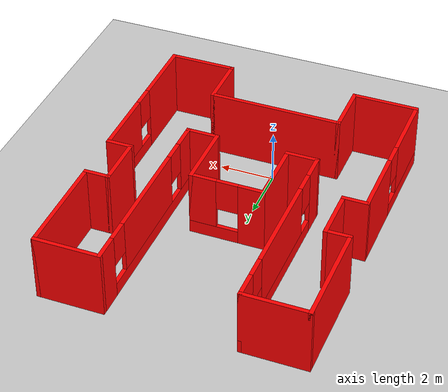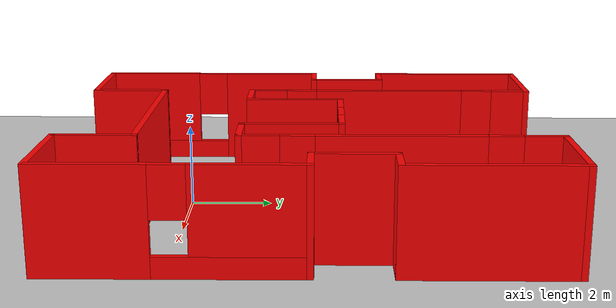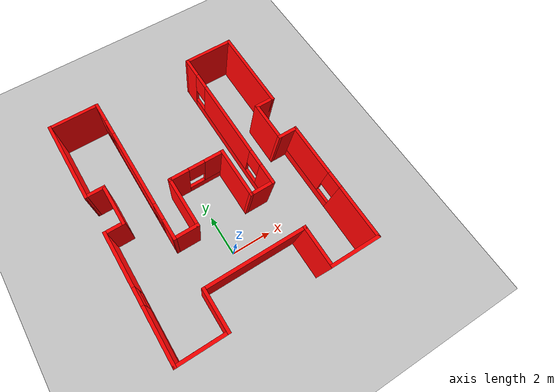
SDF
<sdf version="1.6">
 <world name="default">
  <light name="sun" type="directional">
   <pose>0 0 15 0 -0 0</pose>
   <diffuse>1 1 1 1</diffuse>
   <specular>0.1 0.1 0.1 1</specular>
   <attenuation>
    <range>1000</range>
    <constant>0.9</constant>
    <linear>0.01</linear>
    <quadratic>0.001</quadratic>
   </attenuation>
   <direction>-0.5 0.5 -1</direction>
  </light>
  <model name="ground_plane">
   <static>1</static>
   <link name="link">
    <collision name="collision">
     <geometry><plane><normal>0 0 1</normal><size>100 100</size></plane></geometry>
     <surface><friction><ode><mu>100</mu><mu2>50</mu2></ode></friction></surface>
    </collision>
    <visual name="visual">
     <cast_shadows>0</cast_shadows>
     <geometry><plane><normal>0 0 1</normal><size>100 100</size></plane></geometry>
     <material>
      <script><uri>file://media/materials/scripts/gazebo.material</uri><name>Gazebo/Grey</name></script>
     </material>
    </visual>
   </link>
  </model>
  <gravity>0 0 -9.8</gravity>
  <magnetic_field>6e-06 2.3e-05 -4.2e-05</magnetic_field>
  <atmosphere type="adiabatic"/>
  <physics name="default_physics" default="0" type="ode">
   <max_step_size>0.001</max_step_size>
   <real_time_factor>1</real_time_factor>
   <real_time_update_rate>1000</real_time_update_rate>
  </physics>
  <scene><ambient>0.4 0.4 0.4 1</ambient><background>0.7 0.7 0.7 1</background><shadows>1</shadows></scene>
  <spherical_coordinates>
   <surface_model>EARTH_WGS84</surface_model>
   <latitude_deg>0</latitude_deg>
   <longitude_deg>0</longitude_deg>
   <elevation>0</elevation>
   <heading_deg>0</heading_deg>
  </spherical_coordinates>
  <model name="Untitled">
   <pose>0.285 2.995 0 0 -0 0</pose>
   <link name="Wall_13">
    <collision name="Wall_13_Collision">
     <geometry><box><size>1.25 0.15 2.5</size></box></geometry>
     <pose>0 0 1.25 0 -0 0</pose>
    </collision>
    <visual name="Wall_13_Visual">
     <pose>0 0 1.25 0 -0 0</pose>
     <geometry><box><size>1.25 0.15 2.5</size></box></geometry>
     <material>
      <script><uri>file://media/materials/scripts/gazebo.material</uri><name>Gazebo/Grey</name></script>
      <ambient>1 0 0 1</ambient>
     </material>
    </visual>
    <pose>-1.875 -1.575 0 0 -0 3.14159</pose>
   </link>
   <link name="Wall_14">
    <pose>-2.425 2.1 0 0 -0 1.5708</pose>
    <visual name="Wall_14_Visual_0">
     <pose>-3.24489 0 1.25 0 -0 0</pose>
     <geometry><box><size>1.01022 0.15 2.5</size></box></geometry>
     <material>
      <script><uri>file://media/materials/scripts/gazebo.material</uri><name>Gazebo/Grey</name></script>
      <ambient>1 0 0 1</ambient>
     </material>
    </visual>
    <collision name="Wall_14_Collision_0">
     <geometry><box><size>1.01022 0.15 2.5</size></box></geometry>
     <pose>-3.24489 0 1.25 0 -0 0</pose>
    </collision>
    <visual name="Wall_14_Visual_1">
     <pose>0.50511 0 0.25 0 -0 0</pose>
     <geometry><box><size>6.48978 0.15 0.5</size></box></geometry>
     <material>
      <script><uri>file://media/materials/scripts/gazebo.material</uri><name>Gazebo/Grey</name></script>
      <ambient>1 0 0 1</ambient>
     </material>
    </visual>
    <collision name="Wall_14_Collision_1">
     <geometry><box><size>6.48978 0.15 0.5</size></box></geometry>
     <pose>0.50511 0 0.25 0 -0 0</pose>
    </collision>
    <visual name="Wall_14_Visual_2">
     <pose>0.001046 0 1.5 0 -0 0</pose>
     <geometry><box><size>3.88165 0.15 2</size></box></geometry>
     <material>
      <script><uri>file://media/materials/scripts/gazebo.material</uri><name>Gazebo/Grey</name></script>
      <ambient>1 0 0 1</ambient>
     </material>
    </visual>
    <collision name="Wall_14_Collision_2">
     <geometry><box><size>3.88165 0.15 2</size></box></geometry>
     <pose>0.001046 0 1.5 0 -0 0</pose>
    </collision>
    <visual name="Wall_14_Visual_3">
     <pose>3.24593 0 1.5 0 -0 0</pose>
     <geometry><box><size>1.00813 0.15 2</size></box></geometry>
     <material>
      <script><uri>file://media/materials/scripts/gazebo.material</uri><name>Gazebo/Grey</name></script>
      <ambient>1 0 0 1</ambient>
     </material>
    </visual>
    <collision name="Wall_14_Collision_3">
     <geometry><box><size>1.00813 0.15 2</size></box></geometry>
     <pose>3.24593 0 1.5 0 -0 0</pose>
    </collision>
    <visual name="Wall_14_Visual_4">
     <pose>-2.33978 0 1.9 0 -0 0</pose>
     <geometry><box><size>0.8 0.15 1.2</size></box></geometry>
     <material>
      <script><uri>file://media/materials/scripts/gazebo.material</uri><name>Gazebo/Grey</name></script>
      <ambient>1 0 0 1</ambient>
     </material>
    </visual>
    <collision name="Wall_14_Collision_4">
     <geometry><box><size>0.8 0.15 1.2</size></box></geometry>
     <pose>-2.33978 0 1.9 0 -0 0</pose>
    </collision>
    <visual name="Wall_14_Visual_5">
     <pose>2.34187 0 1.9 0 -0 0</pose>
     <geometry><box><size>0.8 0.15 1.2</size></box></geometry>
     <material>
      <script><uri>file://media/materials/scripts/gazebo.material</uri><name>Gazebo/Grey</name></script>
      <ambient>1 0 0 1</ambient>
     </material>
    </visual>
    <collision name="Wall_14_Collision_5">
     <geometry><box><size>0.8 0.15 1.2</size></box></geometry>
     <pose>2.34187 0 1.9 0 -0 0</pose>
    </collision>
   </link>
   <link name="Wall_15">
    <collision name="Wall_15_Collision">
     <geometry><box><size>2.5 0.15 2.5</size></box></geometry>
     <pose>0 0 1.25 0 -0 0</pose>
    </collision>
    <visual name="Wall_15_Visual">
     <pose>0 0 1.25 0 -0 0</pose>
     <geometry><box><size>2.5 0.15 2.5</size></box></geometry>
     <material>
      <script><uri>file://media/materials/scripts/gazebo.material</uri><name>Gazebo/Grey</name></script>
      <ambient>1 0 0 1</ambient>
     </material>
    </visual>
    <pose>-3.6 5.775 0 0 -0 3.14159</pose>
   </link>
   <link name="Wall_16">
    <collision name="Wall_16_Collision">
     <geometry><box><size>4 0.15 2.5</size></box></geometry>
     <pose>0 0 1.25 0 -0 0</pose>
    </collision>
    <visual name="Wall_16_Visual">
     <pose>0 0 1.25 0 -0 0</pose>
     <geometry><box><size>4 0.15 2.5</size></box></geometry>
     <material>
      <script><uri>file://media/materials/scripts/gazebo.material</uri><name>Gazebo/Grey</name></script>
      <ambient>1 0 0 1</ambient>
     </material>
    </visual>
    <pose>-4.775 3.85 0 0 0 -1.5708</pose>
   </link>
   <link name="Wall_17">
    <collision name="Wall_17_Collision">
     <geometry><box><size>1 0.15 2.5</size></box></geometry>
     <pose>0 0 1.25 0 -0 0</pose>
    </collision>
    <visual name="Wall_17_Visual">
     <pose>0 0 1.25 0 -0 0</pose>
     <geometry><box><size>1 0.15 2.5</size></box></geometry>
     <material>
      <script><uri>file://media/materials/scripts/gazebo.material</uri><name>Gazebo/Grey</name></script>
      <ambient>1 0 0 1</ambient>
     </material>
    </visual>
    <pose>-4.35 1.925 0 0 -0 0</pose>
   </link>
   <link name="Wall_18">
    <collision name="Wall_18_Collision">
     <geometry><box><size>2 0.15 2.5</size></box></geometry>
     <pose>0 0 1.25 0 -0 0</pose>
    </collision>
    <visual name="Wall_18_Visual">
     <pose>0 0 1.25 0 -0 0</pose>
     <geometry><box><size>2 0.15 2.5</size></box></geometry>
     <material>
      <script><uri>file://media/materials/scripts/gazebo.material</uri><name>Gazebo/Grey</name></script>
      <ambient>1 0 0 1</ambient>
     </material>
    </visual>
    <pose>-3.925 1 0 0 0 -1.5708</pose>
   </link>
   <link name="Wall_19">
    <collision name="Wall_19_Collision">
     <geometry><box><size>1 0.15 2.5</size></box></geometry>
     <pose>0 0 1.25 0 -0 0</pose>
    </collision>
    <visual name="Wall_19_Visual">
     <pose>0 0 1.25 0 -0 0</pose>
     <geometry><box><size>1 0.15 2.5</size></box></geometry>
     <material>
      <script><uri>file://media/materials/scripts/gazebo.material</uri><name>Gazebo/Grey</name></script>
      <ambient>1 0 0 1</ambient>
     </material>
    </visual>
    <pose>-4.35 0.075 0 0 -0 3.14159</pose>
   </link>
   <link name="Wall_38">
    <pose>-4.775 -2.85 0 0 0 -1.5708</pose>
    <visual name="Wall_38_Visual_0">
     <pose>-1.69583 0 1.25 0 -0 0</pose>
     <geometry><box><size>2.60833 0.15 2.5</size></box></geometry>
     <material>
      <script><uri>file://media/materials/scripts/gazebo.material</uri><name>Gazebo/Grey</name></script>
      <ambient>1 0 0 1</ambient>
     </material>
    </visual>
    <collision name="Wall_38_Collision_0">
     <geometry><box><size>2.60833 0.15 2.5</size></box></geometry>
     <pose>-1.69583 0 1.25 0 -0 0</pose>
    </collision>
    <visual name="Wall_38_Visual_1">
     <pose>1.30417 0 0.25 0 -0 0</pose>
     <geometry><box><size>3.39167 0.15 0.5</size></box></geometry>
     <material>
      <script><uri>file://media/materials/scripts/gazebo.material</uri><name>Gazebo/Grey</name></script>
      <ambient>1 0 0 1</ambient>
     </material>
    </visual>
    <collision name="Wall_38_Collision_1">
     <geometry><box><size>3.39167 0.15 0.5</size></box></geometry>
     <pose>1.30417 0 0.25 0 -0 0</pose>
    </collision>
    <visual name="Wall_38_Visual_2">
     <pose>1.70416 0 1.5 0 -0 0</pose>
     <geometry><box><size>2.59167 0.15 2</size></box></geometry>
     <material>
      <script><uri>file://media/materials/scripts/gazebo.material</uri><name>Gazebo/Grey</name></script>
      <ambient>1 0 0 1</ambient>
     </material>
    </visual>
    <collision name="Wall_38_Collision_2">
     <geometry><box><size>2.59167 0.15 2</size></box></geometry>
     <pose>1.70416 0 1.5 0 -0 0</pose>
    </collision>
    <visual name="Wall_38_Visual_3">
     <pose>0.008329 0 1.9 0 -0 0</pose>
     <geometry><box><size>0.8 0.15 1.2</size></box></geometry>
     <material>
      <script><uri>file://media/materials/scripts/gazebo.material</uri><name>Gazebo/Grey</name></script>
      <ambient>1 0 0 1</ambient>
     </material>
    </visual>
    <collision name="Wall_38_Collision_3">
     <geometry><box><size>0.8 0.15 1.2</size></box></geometry>
     <pose>0.008329 0 1.9 0 -0 0</pose>
    </collision>
   </link>
   <link name="Wall_39">
    <collision name="Wall_39_Collision">
     <geometry><box><size>2.5 0.15 2.5</size></box></geometry>
     <pose>0 0 1.25 0 -0 0</pose>
    </collision>
    <visual name="Wall_39_Visual">
     <pose>0 0 1.25 0 -0 0</pose>
     <geometry><box><size>2.5 0.15 2.5</size></box></geometry>
     <material>
      <script><uri>file://media/materials/scripts/gazebo.material</uri><name>Gazebo/Grey</name></script>
      <ambient>1 0 0 1</ambient>
     </material>
    </visual>
    <pose>-3.6 -5.775 0 0 -0 0</pose>
   </link>
   <link name="Wall_42">
    <collision name="Wall_42_Collision">
     <geometry><box><size>2 0.15 2.5</size></box></geometry>
     <pose>0 0 1.25 0 -0 0</pose>
    </collision>
    <visual name="Wall_42_Visual">
     <pose>0 0 1.25 0 -0 0</pose>
     <geometry><box><size>2 0.15 2.5</size></box></geometry>
     <material>
      <script><uri>file://media/materials/scripts/gazebo.material</uri><name>Gazebo/Grey</name></script>
      <ambient>1 0 0 1</ambient>
     </material>
    </visual>
    <pose>-2.425 -4.85 0 0 -0 1.5708</pose>
   </link>
   <link name="Wall_44">
    <collision name="Wall_44_Collision">
     <geometry><box><size>5 0.15 2.5</size></box></geometry>
     <pose>0 0 1.25 0 -0 0</pose>
    </collision>
    <visual name="Wall_44_Visual">
     <pose>0 0 1.25 0 -0 0</pose>
     <geometry><box><size>5 0.15 2.5</size></box></geometry>
     <material>
      <script><uri>file://media/materials/scripts/gazebo.material</uri><name>Gazebo/Grey</name></script>
      <ambient>1 0 0 1</ambient>
     </material>
    </visual>
    <pose>0 -3.925 0 0 -0 0</pose>
   </link>
   <link name="Wall_45">
    <collision name="Wall_45_Collision">
     <geometry><box><size>2 0.15 2.5</size></box></geometry>
     <pose>0 0 1.25 0 -0 0</pose>
    </collision>
    <visual name="Wall_45_Visual">
     <pose>0 0 1.25 0 -0 0</pose>
     <geometry><box><size>2 0.15 2.5</size></box></geometry>
     <material>
      <script><uri>file://media/materials/scripts/gazebo.material</uri><name>Gazebo/Grey</name></script>
      <ambient>1 0 0 1</ambient>
     </material>
    </visual>
    <pose>2.425 -4.85 0 0 0 -1.5708</pose>
   </link>
   <link name="Wall_46">
    <collision name="Wall_46_Collision">
     <geometry><box><size>2.5 0.15 2.5</size></box></geometry>
     <pose>0 0 1.25 0 -0 0</pose>
    </collision>
    <visual name="Wall_46_Visual">
     <pose>0 0 1.25 0 -0 0</pose>
     <geometry><box><size>2.5 0.15 2.5</size></box></geometry>
     <material>
      <script><uri>file://media/materials/scripts/gazebo.material</uri><name>Gazebo/Grey</name></script>
      <ambient>1 0 0 1</ambient>
     </material>
    </visual>
    <pose>3.6 -5.775 0 0 -0 0</pose>
   </link>
   <link name="Wall_47">
    <pose>4.775 -2.85 0 0 -0 1.5708</pose>
    <visual name="Wall_47_Visual_0">
     <pose>-1.70416 0 1.25 0 -0 0</pose>
     <geometry><box><size>2.59167 0.15 2.5</size></box></geometry>
     <material>
      <script><uri>file://media/materials/scripts/gazebo.material</uri><name>Gazebo/Grey</name></script>
      <ambient>1 0 0 1</ambient>
     </material>
    </visual>
    <collision name="Wall_47_Collision_0">
     <geometry><box><size>2.59167 0.15 2.5</size></box></geometry>
     <pose>-1.70416 0 1.25 0 -0 0</pose>
    </collision>
    <visual name="Wall_47_Visual_1">
     <pose>1.29584 0 0.25 0 -0 0</pose>
     <geometry><box><size>3.40833 0.15 0.5</size></box></geometry>
     <material>
      <script><uri>file://media/materials/scripts/gazebo.material</uri><name>Gazebo/Grey</name></script>
      <ambient>1 0 0 1</ambient>
     </material>
    </visual>
    <collision name="Wall_47_Collision_1">
     <geometry><box><size>3.40833 0.15 0.5</size></box></geometry>
     <pose>1.29584 0 0.25 0 -0 0</pose>
    </collision>
    <visual name="Wall_47_Visual_2">
     <pose>1.69583 0 1.5 0 -0 0</pose>
     <geometry><box><size>2.60833 0.15 2</size></box></geometry>
     <material>
      <script><uri>file://media/materials/scripts/gazebo.material</uri><name>Gazebo/Grey</name></script>
      <ambient>1 0 0 1</ambient>
     </material>
    </visual>
    <collision name="Wall_47_Collision_2">
     <geometry><box><size>2.60833 0.15 2</size></box></geometry>
     <pose>1.69583 0 1.5 0 -0 0</pose>
    </collision>
    <visual name="Wall_47_Visual_3">
     <pose>-0.008329 0 1.9 0 -0 0</pose>
     <geometry><box><size>0.8 0.15 1.2</size></box></geometry>
     <material>
      <script><uri>file://media/materials/scripts/gazebo.material</uri><name>Gazebo/Grey</name></script>
      <ambient>1 0 0 1</ambient>
     </material>
    </visual>
    <collision name="Wall_47_Collision_3">
     <geometry><box><size>0.8 0.15 1.2</size></box></geometry>
     <pose>-0.008329 0 1.9 0 -0 0</pose>
    </collision>
   </link>
   <link name="Wall_48">
    <collision name="Wall_48_Collision">
     <geometry><box><size>1 0.15 2.5</size></box></geometry>
     <pose>0 0 1.25 0 -0 0</pose>
    </collision>
    <visual name="Wall_48_Visual">
     <pose>0 0 1.25 0 -0 0</pose>
     <geometry><box><size>1 0.15 2.5</size></box></geometry>
     <material>
      <script><uri>file://media/materials/scripts/gazebo.material</uri><name>Gazebo/Grey</name></script>
      <ambient>1 0 0 1</ambient>
     </material>
    </visual>
    <pose>4.35 0.075 0 0 -0 3.14159</pose>
   </link>
   <link name="Wall_49">
    <collision name="Wall_49_Collision">
     <geometry><box><size>2 0.15 2.5</size></box></geometry>
     <pose>0 0 1.25 0 -0 0</pose>
    </collision>
    <visual name="Wall_49_Visual">
     <pose>0 0 1.25 0 -0 0</pose>
     <geometry><box><size>2 0.15 2.5</size></box></geometry>
     <material>
      <script><uri>file://media/materials/scripts/gazebo.material</uri><name>Gazebo/Grey</name></script>
      <ambient>1 0 0 1</ambient>
     </material>
    </visual>
    <pose>3.925 1 0 0 -0 1.5708</pose>
   </link>
   <link name="Wall_50">
    <collision name="Wall_50_Collision">
     <geometry><box><size>1 0.15 2.5</size></box></geometry>
     <pose>0 0 1.25 0 -0 0</pose>
    </collision>
    <visual name="Wall_50_Visual">
     <pose>0 0 1.25 0 -0 0</pose>
     <geometry><box><size>1 0.15 2.5</size></box></geometry>
     <material>
      <script><uri>file://media/materials/scripts/gazebo.material</uri><name>Gazebo/Grey</name></script>
      <ambient>1 0 0 1</ambient>
     </material>
    </visual>
    <pose>4.35 1.925 0 0 -0 0</pose>
   </link>
   <link name="Wall_51">
    <collision name="Wall_51_Collision">
     <geometry><box><size>4 0.15 2.5</size></box></geometry>
     <pose>0 0 1.25 0 -0 0</pose>
    </collision>
    <visual name="Wall_51_Visual">
     <pose>0 0 1.25 0 -0 0</pose>
     <geometry><box><size>4 0.15 2.5</size></box></geometry>
     <material>
      <script><uri>file://media/materials/scripts/gazebo.material</uri><name>Gazebo/Grey</name></script>
      <ambient>1 0 0 1</ambient>
     </material>
    </visual>
    <pose>4.775 3.85 0 0 -0 1.5708</pose>
   </link>
   <link name="Wall_52">
    <collision name="Wall_52_Collision">
     <geometry><box><size>2.5 0.15 2.5</size></box></geometry>
     <pose>0 0 1.25 0 -0 0</pose>
    </collision>
    <visual name="Wall_52_Visual">
     <pose>0 0 1.25 0 -0 0</pose>
     <geometry><box><size>2.5 0.15 2.5</size></box></geometry>
     <material>
      <script><uri>file://media/materials/scripts/gazebo.material</uri><name>Gazebo/Grey</name></script>
      <ambient>1 0 0 1</ambient>
     </material>
    </visual>
    <pose>3.6 5.775 0 0 -0 3.14159</pose>
   </link>
   <link name="Wall_53">
    <pose>2.425 2.1 0 0 0 -1.5708</pose>
    <visual name="Wall_53_Visual_0">
     <pose>-3.24593 0 1.25 0 -0 0</pose>
     <geometry><box><size>1.00813 0.15 2.5</size></box></geometry>
     <material>
      <script><uri>file://media/materials/scripts/gazebo.material</uri><name>Gazebo/Grey</name></script>
      <ambient>1 0 0 1</ambient>
     </material>
    </visual>
    <collision name="Wall_53_Collision_0">
     <geometry><box><size>1.00813 0.15 2.5</size></box></geometry>
     <pose>-3.24593 0 1.25 0 -0 0</pose>
    </collision>
    <visual name="Wall_53_Visual_1">
     <pose>0.504065 0 0.25 0 -0 0</pose>
     <geometry><box><size>6.49187 0.15 0.5</size></box></geometry>
     <material>
      <script><uri>file://media/materials/scripts/gazebo.material</uri><name>Gazebo/Grey</name></script>
      <ambient>1 0 0 1</ambient>
     </material>
    </visual>
    <collision name="Wall_53_Collision_1">
     <geometry><box><size>6.49187 0.15 0.5</size></box></geometry>
     <pose>0.504065 0 0.25 0 -0 0</pose>
    </collision>
    <visual name="Wall_53_Visual_2">
     <pose>-0.001046 0 1.5 0 -0 0</pose>
     <geometry><box><size>3.88165 0.15 2</size></box></geometry>
     <material>
      <script><uri>file://media/materials/scripts/gazebo.material</uri><name>Gazebo/Grey</name></script>
      <ambient>1 0 0 1</ambient>
     </material>
    </visual>
    <collision name="Wall_53_Collision_2">
     <geometry><box><size>3.88165 0.15 2</size></box></geometry>
     <pose>-0.001046 0 1.5 0 -0 0</pose>
    </collision>
    <visual name="Wall_53_Visual_3">
     <pose>3.24489 0 1.5 0 -0 0</pose>
     <geometry><box><size>1.01022 0.15 2</size></box></geometry>
     <material>
      <script><uri>file://media/materials/scripts/gazebo.material</uri><name>Gazebo/Grey</name></script>
      <ambient>1 0 0 1</ambient>
     </material>
    </visual>
    <collision name="Wall_53_Collision_3">
     <geometry><box><size>1.01022 0.15 2</size></box></geometry>
     <pose>3.24489 0 1.5 0 -0 0</pose>
    </collision>
    <visual name="Wall_53_Visual_4">
     <pose>-2.34187 0 1.9 0 -0 0</pose>
     <geometry><box><size>0.8 0.15 1.2</size></box></geometry>
     <material>
      <script><uri>file://media/materials/scripts/gazebo.material</uri><name>Gazebo/Grey</name></script>
      <ambient>1 0 0 1</ambient>
     </material>
    </visual>
    <collision name="Wall_53_Collision_4">
     <geometry><box><size>0.8 0.15 1.2</size></box></geometry>
     <pose>-2.34187 0 1.9 0 -0 0</pose>
    </collision>
    <visual name="Wall_53_Visual_5">
     <pose>2.33978 0 1.9 0 -0 0</pose>
     <geometry><box><size>0.8 0.15 1.2</size></box></geometry>
     <material>
      <script><uri>file://media/materials/scripts/gazebo.material</uri><name>Gazebo/Grey</name></script>
      <ambient>1 0 0 1</ambient>
     </material>
    </visual>
    <collision name="Wall_53_Collision_5">
     <geometry><box><size>0.8 0.15 1.2</size></box></geometry>
     <pose>2.33978 0 1.9 0 -0 0</pose>
    </collision>
   </link>
   <link name="Wall_55">
    <collision name="Wall_55_Collision">
     <geometry><box><size>1.25 0.15 2.5</size></box></geometry>
     <pose>0 0 1.25 0 -0 0</pose>
    </collision>
    <visual name="Wall_55_Visual">
     <pose>0 0 1.25 0 -0 0</pose>
     <geometry><box><size>1.25 0.15 2.5</size></box></geometry>
     <material>
      <script><uri>file://media/materials/scripts/gazebo.material</uri><name>Gazebo/Grey</name></script>
      <ambient>1 0 0 1</ambient>
     </material>
    </visual>
    <pose>1.875 -1.575 0 0 -0 3.14159</pose>
   </link>
   <link name="Wall_56">
    <collision name="Wall_56_Collision">
     <geometry><box><size>2.5 0.15 2.5</size></box></geometry>
     <pose>0 0 1.25 0 -0 0</pose>
    </collision>
    <visual name="Wall_56_Visual">
     <pose>0 0 1.25 0 -0 0</pose>
     <geometry><box><size>2.5 0.15 2.5</size></box></geometry>
     <material>
      <script><uri>file://media/materials/scripts/gazebo.material</uri><name>Gazebo/Grey</name></script>
      <ambient>1 0 0 1</ambient>
     </material>
    </visual>
    <pose>1.325 -0.4 0 0 -0 1.5708</pose>
   </link>
   <link name="Wall_59">
    <collision name="Wall_59_Collision">
     <geometry><box><size>2.5 0.15 2.5</size></box></geometry>
     <pose>0 0 1.25 0 -0 0</pose>
    </collision>
    <visual name="Wall_59_Visual">
     <pose>0 0 1.25 0 -0 0</pose>
     <geometry><box><size>2.5 0.15 2.5</size></box></geometry>
     <material>
      <script><uri>file://media/materials/scripts/gazebo.material</uri><name>Gazebo/Grey</name></script>
      <ambient>1 0 0 1</ambient>
     </material>
    </visual>
    <pose>-1.325 -0.4 0 0 -0 1.5708</pose>
   </link>
   <link name="Wall_60">
    <pose>0 0.775 0 0 -0 0</pose>
    <visual name="Wall_60_Visual_0">
     <pose>-0.904031 0 1.25 0 -0 0</pose>
     <geometry><box><size>0.991937 0.15 2.5</size></box></geometry>
     <material>
      <script><uri>file://media/materials/scripts/gazebo.material</uri><name>Gazebo/Grey</name></script>
      <ambient>1 0 0 1</ambient>
     </material>
    </visual>
    <collision name="Wall_60_Collision_0">
     <geometry><box><size>0.991937 0.15 2.5</size></box></geometry>
     <pose>-0.904031 0 1.25 0 -0 0</pose>
    </collision>
    <visual name="Wall_60_Visual_1">
     <pose>0.495969 0 0.25 0 -0 0</pose>
     <geometry><box><size>1.80806 0.15 0.5</size></box></geometry>
     <material>
      <script><uri>file://media/materials/scripts/gazebo.material</uri><name>Gazebo/Grey</name></script>
      <ambient>1 0 0 1</ambient>
     </material>
    </visual>
    <collision name="Wall_60_Collision_1">
     <geometry><box><size>1.80806 0.15 0.5</size></box></geometry>
     <pose>0.495969 0 0.25 0 -0 0</pose>
    </collision>
    <visual name="Wall_60_Visual_2">
     <pose>0.895969 0 1.5 0 -0 0</pose>
     <geometry><box><size>1.00806 0.15 2</size></box></geometry>
     <material>
      <script><uri>file://media/materials/scripts/gazebo.material</uri><name>Gazebo/Grey</name></script>
      <ambient>1 0 0 1</ambient>
     </material>
    </visual>
    <collision name="Wall_60_Collision_2">
     <geometry><box><size>1.00806 0.15 2</size></box></geometry>
     <pose>0.895969 0 1.5 0 -0 0</pose>
    </collision>
    <visual name="Wall_60_Visual_3">
     <pose>-0.008063 0 1.9 0 -0 0</pose>
     <geometry><box><size>0.8 0.15 1.2</size></box></geometry>
     <material>
      <script><uri>file://media/materials/scripts/gazebo.material</uri><name>Gazebo/Grey</name></script>
      <ambient>1 0 0 1</ambient>
     </material>
    </visual>
    <collision name="Wall_60_Collision_3">
     <geometry><box><size>0.8 0.15 1.2</size></box></geometry>
     <pose>-0.008063 0 1.9 0 -0 0</pose>
    </collision>
   </link>
   <static>1</static>
  </model>
 </world>
</sdf>
